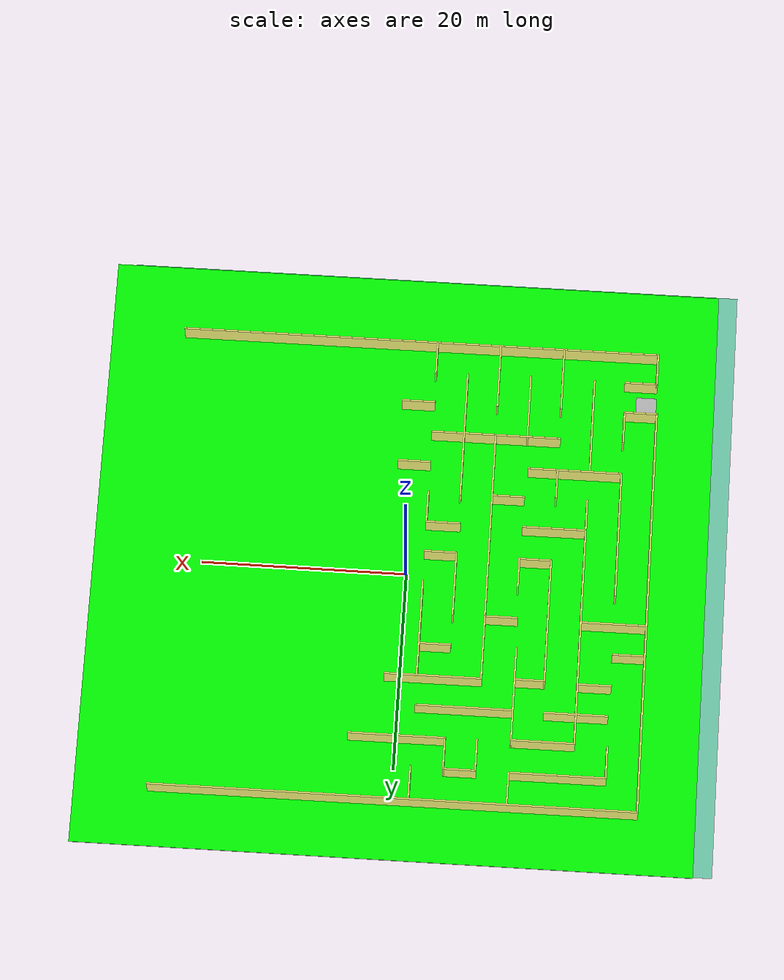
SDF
<sdf version="1.6">
 <world name="default">
  <include><uri>model://start_marker</uri><pose>-22.612965 -18.869457 0.026924 0 0 -1.57</pose></include>
  <model name="Maze3">
   <pose>-0.233521 -0.994132 0 0 -0 0</pose>
   <link name="Floor_0">
    <collision name="Floor_0_Collision">
     <geometry><box><size>60 60.01 0.1</size></box></geometry>
     <pose>0 0 0.05 0 -0 0</pose>
    </collision>
    <visual name="Floor_0_Visual">
     <pose>0 0 0.05 0 -0 0</pose>
     <geometry><box><size>60 60.01 0.1</size></box></geometry>
     <material>
      <script><uri>file://media/materials/scripts/gazebo.material</uri><name>Gazebo/Grey</name></script>
      <ambient>0 1 0 1</ambient>
     </material>
     <meta><layer>1</layer></meta>
    </visual>
    <pose>0.91648 0.050869 0.001 0 -0 0</pose>
   </link>
   <link name="Wall_0">
    <collision name="Wall_0_Collision">
     <geometry><box><size>60.01 60 0.001</size></box></geometry>
     <pose>0 0 0.0005 0 -0 0</pose>
    </collision>
    <visual name="Wall_0_Visual">
     <pose>0 0 0.0005 0 -0 0</pose>
     <geometry><box><size>60.01 60 0.001</size></box></geometry>
     <material>
      <script><uri>file://media/materials/scripts/gazebo.material</uri><name>Gazebo/Grey</name></script>
      <ambient>0.435294 0.796078 0.67451 1</ambient>
     </material>
     <meta><layer>0</layer></meta>
    </visual>
    <pose>-0.916479 -0.050868 0 0 -0 -1.5708</pose>
   </link>
   <link name="Wall_10">
    <collision name="Wall_10_Collision">
     <geometry><box><size>47.25 0.15 2.5</size></box></geometry>
     <pose>0 0 1.25 0 -0 0</pose>
    </collision>
    <visual name="Wall_10_Visual">
     <pose>0 0 1.25 0 -0 0</pose>
     <geometry><box><size>47.25 0.15 2.5</size></box></geometry>
     <material>
      <script><uri>file://media/materials/scripts/gazebo.material</uri><name>Gazebo/Grey</name></script>
      <ambient>1 1 0.5 1</ambient>
     </material>
     <meta><layer>1</layer></meta>
    </visual>
    <pose>0.135989 24.4954 0.001 0 -0 0</pose>
   </link>
   <link name="Wall_100">
    <collision name="Wall_100_Collision">
     <geometry><box><size>12.75 0.15 2.5</size></box></geometry>
     <pose>0 0 1.25 0 -0 0</pose>
    </collision>
    <visual name="Wall_100_Visual">
     <pose>0 0 1.25 0 -0 0</pose>
     <geometry><box><size>12.75 0.15 2.5</size></box></geometry>
     <material>
      <script><uri>file://media/materials/scripts/gazebo.material</uri><name>Gazebo/Grey</name></script>
      <ambient>1 1 0.5 1</ambient>
     </material>
     <meta><layer>1</layer></meta>
    </visual>
    <pose>-7.73864 -13.2116 0.001 0 -0 0</pose>
   </link>
   <link name="Wall_102">
    <collision name="Wall_102_Collision">
     <geometry><box><size>25.25 0.15 2.5</size></box></geometry>
     <pose>0 0 1.25 0 -0 0</pose>
    </collision>
    <visual name="Wall_102_Visual">
     <pose>0 0 1.25 0 -0 0</pose>
     <geometry><box><size>25.25 0.15 2.5</size></box></geometry>
     <material>
      <script><uri>file://media/materials/scripts/gazebo.material</uri><name>Gazebo/Grey</name></script>
      <ambient>1 1 0.5 1</ambient>
     </material>
     <meta><layer>1</layer></meta>
    </visual>
    <pose>-7.71415 -0.57461 0.001 0 -0 -1.5708</pose>
   </link>
   <link name="Wall_104">
    <collision name="Wall_104_Collision">
     <geometry><box><size>3.25 0.15 2.5</size></box></geometry>
     <pose>0 0 1.25 0 -0 0</pose>
    </collision>
    <visual name="Wall_104_Visual">
     <pose>0 0 1.25 0 -0 0</pose>
     <geometry><box><size>3.25 0.15 2.5</size></box></geometry>
     <material>
      <script><uri>file://media/materials/scripts/gazebo.material</uri><name>Gazebo/Grey</name></script>
      <ambient>1 1 0.5 1</ambient>
     </material>
     <meta><layer>1</layer></meta>
    </visual>
    <pose>-9.29394 5.59276 0.001 0 -0 3.14159</pose>
   </link>
   <link name="Wall_106">
    <collision name="Wall_106_Collision">
     <geometry><box><size>3.25 0.15 2.5</size></box></geometry>
     <pose>0 0 1.25 0 -0 0</pose>
    </collision>
    <visual name="Wall_106_Visual">
     <pose>0 0 1.25 0 -0 0</pose>
     <geometry><box><size>3.25 0.15 2.5</size></box></geometry>
     <material>
      <script><uri>file://media/materials/scripts/gazebo.material</uri><name>Gazebo/Grey</name></script>
      <ambient>1 1 0.5 1</ambient>
     </material>
     <meta><layer>1</layer></meta>
    </visual>
    <pose>-2.96556 8.71353 0.001 0 -0 0</pose>
   </link>
   <link name="Wall_108">
    <collision name="Wall_108_Collision">
     <geometry><box><size>9.5 0.15 2.5</size></box></geometry>
     <pose>0 0 1.25 0 -0 0</pose>
    </collision>
    <visual name="Wall_108_Visual">
     <pose>0 0 1.25 0 -0 0</pose>
     <geometry><box><size>9.5 0.15 2.5</size></box></geometry>
     <material>
      <script><uri>file://media/materials/scripts/gazebo.material</uri><name>Gazebo/Grey</name></script>
      <ambient>1 1 0.5 1</ambient>
     </material>
     <meta><layer>1</layer></meta>
    </visual>
    <pose>-3.03914 11.9754 0.001 0 -0 0</pose>
   </link>
   <link name="Wall_110">
    <collision name="Wall_110_Collision">
     <geometry><box><size>6.5 0.15 2.5</size></box></geometry>
     <pose>0 0 1.25 0 -0 0</pose>
    </collision>
    <visual name="Wall_110_Visual">
     <pose>0 0 1.25 0 -0 0</pose>
     <geometry><box><size>6.5 0.15 2.5</size></box></geometry>
     <material>
      <script><uri>file://media/materials/scripts/gazebo.material</uri><name>Gazebo/Grey</name></script>
      <ambient>1 1 0.5 1</ambient>
     </material>
     <meta><layer>1</layer></meta>
    </visual>
    <pose>-10.8437 -16.3573 0.001 0 -0 -1.5708</pose>
   </link>
   <link name="Wall_112">
    <collision name="Wall_112_Collision">
     <geometry><box><size>6.5 0.15 2.5</size></box></geometry>
     <pose>0 0 1.25 0 -0 0</pose>
    </collision>
    <visual name="Wall_112_Visual">
     <pose>0 0 1.25 0 -0 0</pose>
     <geometry><box><size>6.5 0.15 2.5</size></box></geometry>
     <material>
      <script><uri>file://media/materials/scripts/gazebo.material</uri><name>Gazebo/Grey</name></script>
      <ambient>1 1 0.5 1</ambient>
     </material>
     <meta><layer>1</layer></meta>
    </visual>
    <pose>-7.70885 -19.4687 0.001 0 -0 -1.5708</pose>
   </link>
   <link name="Wall_114">
    <collision name="Wall_114_Collision">
     <geometry><box><size>12.75 0.15 2.5</size></box></geometry>
     <pose>0 0 1.25 0 -0 0</pose>
    </collision>
    <visual name="Wall_114_Visual">
     <pose>0 0 1.25 0 -0 0</pose>
     <geometry><box><size>12.75 0.15 2.5</size></box></geometry>
     <material>
      <script><uri>file://media/materials/scripts/gazebo.material</uri><name>Gazebo/Grey</name></script>
      <ambient>1 1 0.5 1</ambient>
     </material>
     <meta><layer>1</layer></meta>
    </visual>
    <pose>-4.60774 -13.1135 0.001 0 -0 -1.5708</pose>
   </link>
   <link name="Wall_116">
    <collision name="Wall_116_Collision">
     <geometry><box><size>3.41182 0.15 2.5</size></box></geometry>
     <pose>0 0 1.25 0 -0 0</pose>
    </collision>
    <visual name="Wall_116_Visual">
     <pose>0 0 1.25 0 -0 0</pose>
     <geometry><box><size>3.41182 0.15 2.5</size></box></geometry>
     <material>
      <script><uri>file://media/materials/scripts/gazebo.material</uri><name>Gazebo/Grey</name></script>
      <ambient>1 1 0.5 1</ambient>
     </material>
     <meta><layer>1</layer></meta>
    </visual>
    <pose>-3.08797 -3.79503 0.001 0 -0 0</pose>
   </link>
   <link name="Wall_118">
    <collision name="Wall_118_Collision">
     <geometry><box><size>3.25 0.15 2.5</size></box></geometry>
     <pose>0 0 1.25 0 -0 0</pose>
    </collision>
    <visual name="Wall_118_Visual">
     <pose>0 0 1.25 0 -0 0</pose>
     <geometry><box><size>3.25 0.15 2.5</size></box></geometry>
     <material>
      <script><uri>file://media/materials/scripts/gazebo.material</uri><name>Gazebo/Grey</name></script>
      <ambient>1 1 0.5 1</ambient>
     </material>
     <meta><layer>1</layer></meta>
    </visual>
    <pose>-1.45706 -5.36526 0.001 0 -0 -1.5708</pose>
   </link>
   <link name="Wall_132">
    <collision name="Wall_132_Collision">
     <geometry><box><size>3.25 0.15 2.5</size></box></geometry>
     <pose>0 0 1.25 0 -0 0</pose>
    </collision>
    <visual name="Wall_132_Visual">
     <pose>0 0 1.25 0 -0 0</pose>
     <geometry><box><size>3.25 0.15 2.5</size></box></geometry>
     <material>
      <script><uri>file://media/materials/scripts/gazebo.material</uri><name>Gazebo/Grey</name></script>
      <ambient>1 1 0.5 1</ambient>
     </material>
     <meta><layer>1</layer></meta>
    </visual>
    <pose>0.132105 -10.0109 0.001 0 -0 3.14159</pose>
   </link>
   <link name="Wall_134">
    <collision name="Wall_134_Collision">
     <geometry><box><size>3.25 0.15 2.5</size></box></geometry>
     <pose>0 0 1.25 0 -0 0</pose>
    </collision>
    <visual name="Wall_134_Visual">
     <pose>0 0 1.25 0 -0 0</pose>
     <geometry><box><size>3.25 0.15 2.5</size></box></geometry>
     <material>
      <script><uri>file://media/materials/scripts/gazebo.material</uri><name>Gazebo/Grey</name></script>
      <ambient>1 1 0.5 1</ambient>
     </material>
     <meta><layer>1</layer></meta>
    </visual>
    <pose>0.039057 -16.3069 0.001 0 -0 3.14159</pose>
   </link>
   <link name="Wall_136">
    <collision name="Wall_136_Collision">
     <geometry><box><size>3.25 0.15 2.5</size></box></geometry>
     <pose>0 0 1.25 0 -0 0</pose>
    </collision>
    <visual name="Wall_136_Visual">
     <pose>0 0 1.25 0 -0 0</pose>
     <geometry><box><size>3.25 0.15 2.5</size></box></geometry>
     <material>
      <script><uri>file://media/materials/scripts/gazebo.material</uri><name>Gazebo/Grey</name></script>
      <ambient>1 1 0.5 1</ambient>
     </material>
     <meta><layer>1</layer></meta>
    </visual>
    <pose>-1.45826 -20.9911 0.001 0 -0 1.5708</pose>
   </link>
   <link name="Wall_138">
    <collision name="Wall_138_Collision">
     <geometry><box><size>9.75 0.15 2.5</size></box></geometry>
     <pose>0 0 1.25 0 -0 0</pose>
    </collision>
    <visual name="Wall_138_Visual">
     <pose>0 0 1.25 0 -0 0</pose>
     <geometry><box><size>9.75 0.15 2.5</size></box></geometry>
     <material>
      <script><uri>file://media/materials/scripts/gazebo.material</uri><name>Gazebo/Grey</name></script>
      <ambient>1 1 0.5 1</ambient>
     </material>
     <meta><layer>1</layer></meta>
    </visual>
    <pose>-1.47426 7.16575 0.001 0 -0 -1.5708</pose>
   </link>
   <link name="Wall_140">
    <collision name="Wall_140_Collision">
     <geometry><box><size>6.5 0.15 2.5</size></box></geometry>
     <pose>0 0 1.25 0 -0 0</pose>
    </collision>
    <visual name="Wall_140_Visual">
     <pose>0 0 1.25 0 -0 0</pose>
     <geometry><box><size>6.5 0.15 2.5</size></box></geometry>
     <material>
      <script><uri>file://media/materials/scripts/gazebo.material</uri><name>Gazebo/Grey</name></script>
      <ambient>1 1 0.5 1</ambient>
     </material>
     <meta><layer>1</layer></meta>
    </visual>
    <pose>-4.58142 2.42261 0.001 0 -0 -1.5708</pose>
   </link>
   <link name="Wall_141">
    <collision name="Wall_141_Collision">
     <geometry><box><size>3.25 0.15 2.5</size></box></geometry>
     <pose>0 0 1.25 0 -0 0</pose>
    </collision>
    <visual name="Wall_141_Visual">
     <pose>0 0 1.25 0 -0 0</pose>
     <geometry><box><size>3.25 0.15 2.5</size></box></geometry>
     <material>
      <script><uri>file://media/materials/scripts/gazebo.material</uri><name>Gazebo/Grey</name></script>
      <ambient>1 1 0.5 1</ambient>
     </material>
     <meta><layer>1</layer></meta>
    </visual>
    <pose>-3.03142 -0.75239 0.001 0 -0 0</pose>
   </link>
   <link name="Wall_163">
    <collision name="Wall_163_Collision">
     <geometry><box><size>9.5 0.15 2.5</size></box></geometry>
     <pose>0 0 1.25 0 -0 0</pose>
    </collision>
    <visual name="Wall_163_Visual">
     <pose>0 0 1.25 0 -0 0</pose>
     <geometry><box><size>9.5 0.15 2.5</size></box></geometry>
     <material>
      <script><uri>file://media/materials/scripts/gazebo.material</uri><name>Gazebo/Grey</name></script>
      <ambient>1 1 0.5 1</ambient>
     </material>
     <meta><layer>1</layer></meta>
    </visual>
    <pose>-6.24665 14.9929 0.001 0 -0 0</pose>
   </link>
   <link name="Wall_175">
    <collision name="Wall_175_Collision">
     <geometry><box><size>3.25 0.15 2.5</size></box></geometry>
     <pose>0 0 1.25 0 -0 0</pose>
    </collision>
    <visual name="Wall_175_Visual">
     <pose>0 0 1.25 0 -0 0</pose>
     <geometry><box><size>3.25 0.15 2.5</size></box></geometry>
     <material>
      <script><uri>file://media/materials/scripts/gazebo.material</uri><name>Gazebo/Grey</name></script>
      <ambient>1 1 0.5 1</ambient>
     </material>
     <meta><layer>1</layer></meta>
    </visual>
    <pose>-1.42323 22.7551 0.001 0 -0 1.5708</pose>
   </link>
   <link name="Wall_2">
    <collision name="Wall_2_Collision">
     <geometry><box><size>60.01 60 0.001</size></box></geometry>
     <pose>0 0 0.0005 0 -0 0</pose>
    </collision>
    <visual name="Wall_2_Visual">
     <pose>0 0 0.0005 0 -0 0</pose>
     <geometry><box><size>60.01 60 0.001</size></box></geometry>
     <material>
      <script><uri>file://media/materials/scripts/gazebo.material</uri><name>Gazebo/Grey</name></script>
      <ambient>1 1 0.5 1</ambient>
     </material>
     <meta><layer>1</layer></meta>
    </visual>
    <pose>0.91648 0.050869 0.001 0 -0 -1.5708</pose>
   </link>
   <link name="Wall_31">
    <collision name="Wall_31_Collision">
     <geometry><box><size>3.25 0.15 2.5</size></box></geometry>
     <pose>0 0 1.25 0 -0 0</pose>
    </collision>
    <visual name="Wall_31_Visual">
     <pose>0 0 1.25 0 -0 0</pose>
     <geometry><box><size>3.25 0.15 2.5</size></box></geometry>
     <material>
      <script><uri>file://media/materials/scripts/gazebo.material</uri><name>Gazebo/Grey</name></script>
      <ambient>1 1 0.5 1</ambient>
     </material>
     <meta><layer>1</layer></meta>
    </visual>
    <pose>-21.7364 -19.4937 0.001 0 -0 3.14159</pose>
   </link>
   <link name="Wall_32">
    <collision name="Wall_32_Collision">
     <geometry><box><size>3.25 0.15 2.5</size></box></geometry>
     <pose>0 0 1.25 0 -0 0</pose>
    </collision>
    <visual name="Wall_32_Visual">
     <pose>0 0 1.25 0 -0 0</pose>
     <geometry><box><size>3.25 0.15 2.5</size></box></geometry>
     <material>
      <script><uri>file://media/materials/scripts/gazebo.material</uri><name>Gazebo/Grey</name></script>
      <ambient>1 1 0.5 1</ambient>
     </material>
     <meta><layer>1</layer></meta>
    </visual>
    <pose>-23.2864 -21.0437 0.001 0 -0 -1.5708</pose>
   </link>
   <link name="Wall_35">
    <collision name="Wall_35_Collision">
     <geometry><box><size>47 0.15 2.5</size></box></geometry>
     <pose>0 0 1.25 0 -0 0</pose>
    </collision>
    <visual name="Wall_35_Visual">
     <pose>0 0 1.25 0 -0 0</pose>
     <geometry><box><size>47 0.15 2.5</size></box></geometry>
     <material>
      <script><uri>file://media/materials/scripts/gazebo.material</uri><name>Gazebo/Grey</name></script>
      <ambient>1 1 0.5 1</ambient>
     </material>
     <meta><layer>1</layer></meta>
    </visual>
    <pose>0.138569 -22.5937 0.001 0 -0 0</pose>
   </link>
   <link name="Wall_4">
    <collision name="Wall_4_Collision">
     <geometry><box><size>41 0.15 2.5</size></box></geometry>
     <pose>0 0 1.25 0 -0 0</pose>
    </collision>
    <visual name="Wall_4_Visual">
     <pose>0 0 1.25 0 -0 0</pose>
     <geometry><box><size>41 0.15 2.5</size></box></geometry>
     <material>
      <script><uri>file://media/materials/scripts/gazebo.material</uri><name>Gazebo/Grey</name></script>
      <ambient>1 1 0.5 1</ambient>
     </material>
     <meta><layer>1</layer></meta>
    </visual>
    <pose>-23.414 4.07037 0.001 0 -0 -1.5708</pose>
   </link>
   <link name="Wall_5">
    <collision name="Wall_5_Collision">
     <geometry><box><size>3.3276 0.15 2.5</size></box></geometry>
     <pose>0 0 1.25 0 -0 0</pose>
    </collision>
    <visual name="Wall_5_Visual">
     <pose>0 0 1.25 0 -0 0</pose>
     <geometry><box><size>3.3276 0.15 2.5</size></box></geometry>
     <material>
      <script><uri>file://media/materials/scripts/gazebo.material</uri><name>Gazebo/Grey</name></script>
      <ambient>1 1 0.5 1</ambient>
     </material>
     <meta><layer>1</layer></meta>
    </visual>
    <pose>-21.8252 -16.3546 0.001 0 -0 0</pose>
   </link>
   <link name="Wall_58">
    <collision name="Wall_58_Collision">
     <geometry><box><size>6.25 0.15 2.5</size></box></geometry>
     <pose>0 0 1.25 0 -0 0</pose>
    </collision>
    <visual name="Wall_58_Visual">
     <pose>0 0 1.25 0 -0 0</pose>
     <geometry><box><size>6.25 0.15 2.5</size></box></geometry>
     <material>
      <script><uri>file://media/materials/scripts/gazebo.material</uri><name>Gazebo/Grey</name></script>
      <ambient>1 1 0.5 1</ambient>
     </material>
     <meta><layer>1</layer></meta>
    </visual>
    <pose>-13.9885 -19.4697 0.001 0 -0 1.5708</pose>
   </link>
   <link name="Wall_60">
    <collision name="Wall_60_Collision">
     <geometry><box><size>9.5 0.15 2.5</size></box></geometry>
     <pose>0 0 1.25 0 -0 0</pose>
    </collision>
    <visual name="Wall_60_Visual">
     <pose>0 0 1.25 0 -0 0</pose>
     <geometry><box><size>9.5 0.15 2.5</size></box></geometry>
     <material>
      <script><uri>file://media/materials/scripts/gazebo.material</uri><name>Gazebo/Grey</name></script>
      <ambient>1 1 0.5 1</ambient>
     </material>
     <meta><layer>1</layer></meta>
    </visual>
    <pose>-17.139 -14.776 0.001 0 -0 1.5708</pose>
   </link>
   <link name="Wall_62">
    <collision name="Wall_62_Collision">
     <geometry><box><size>12.75 0.15 2.5</size></box></geometry>
     <pose>0 0 1.25 0 -0 0</pose>
    </collision>
    <visual name="Wall_62_Visual">
     <pose>0 0 1.25 0 -0 0</pose>
     <geometry><box><size>12.75 0.15 2.5</size></box></geometry>
     <material>
      <script><uri>file://media/materials/scripts/gazebo.material</uri><name>Gazebo/Grey</name></script>
      <ambient>1 1 0.5 1</ambient>
     </material>
     <meta><layer>1</layer></meta>
    </visual>
    <pose>-20.2487 -3.61528 0.001 0 -0 -1.5708</pose>
   </link>
   <link name="Wall_63">
    <collision name="Wall_63_Collision">
     <geometry><box><size>9.25 0.15 2.5</size></box></geometry>
     <pose>0 0 1.25 0 -0 0</pose>
    </collision>
    <visual name="Wall_63_Visual">
     <pose>0 0 1.25 0 -0 0</pose>
     <geometry><box><size>9.25 0.15 2.5</size></box></geometry>
     <material>
      <script><uri>file://media/materials/scripts/gazebo.material</uri><name>Gazebo/Grey</name></script>
      <ambient>1 1 0.5 1</ambient>
     </material>
     <meta><layer>1</layer></meta>
    </visual>
    <pose>-15.6987 -9.91528 0.001 0 -0 0</pose>
   </link>
   <link name="Wall_65">
    <collision name="Wall_65_Collision">
     <geometry><box><size>3.25 0.15 2.5</size></box></geometry>
     <pose>0 0 1.25 0 -0 0</pose>
    </collision>
    <visual name="Wall_65_Visual">
     <pose>0 0 1.25 0 -0 0</pose>
     <geometry><box><size>3.25 0.15 2.5</size></box></geometry>
     <material>
      <script><uri>file://media/materials/scripts/gazebo.material</uri><name>Gazebo/Grey</name></script>
      <ambient>1 1 0.5 1</ambient>
     </material>
     <meta><layer>1</layer></meta>
    </visual>
    <pose>-21.88 8.75098 0.001 0 -0 0</pose>
   </link>
   <link name="Wall_67">
    <collision name="Wall_67_Collision">
     <geometry><box><size>6.5 0.15 2.5</size></box></geometry>
     <pose>0 0 1.25 0 -0 0</pose>
    </collision>
    <visual name="Wall_67_Visual">
     <pose>0 0 1.25 0 -0 0</pose>
     <geometry><box><size>6.5 0.15 2.5</size></box></geometry>
     <material>
      <script><uri>file://media/materials/scripts/gazebo.material</uri><name>Gazebo/Grey</name></script>
      <ambient>1 1 0.5 1</ambient>
     </material>
     <meta><layer>1</layer></meta>
    </visual>
    <pose>-20.255 5.65557 0.001 0 -0 0</pose>
   </link>
   <link name="Wall_69">
    <collision name="Wall_69_Collision">
     <geometry><box><size>25 0.15 2.5</size></box></geometry>
     <pose>0 0 1.25 0 -0 0</pose>
    </collision>
    <visual name="Wall_69_Visual">
     <pose>0 0 1.25 0 -0 0</pose>
     <geometry><box><size>25 0.15 2.5</size></box></geometry>
     <material>
      <script><uri>file://media/materials/scripts/gazebo.material</uri><name>Gazebo/Grey</name></script>
      <ambient>1 1 0.5 1</ambient>
     </material>
     <meta><layer>1</layer></meta>
    </visual>
    <pose>-17.0424 5.58016 0.001 0 -0 1.5708</pose>
   </link>
   <link name="Wall_70">
    <collision name="Wall_70_Collision">
     <geometry><box><size>6.25 0.15 2.5</size></box></geometry>
     <pose>0 0 1.25 0 -0 0</pose>
    </collision>
    <visual name="Wall_70_Visual">
     <pose>0 0 1.25 0 -0 0</pose>
     <geometry><box><size>6.25 0.15 2.5</size></box></geometry>
     <material>
      <script><uri>file://media/materials/scripts/gazebo.material</uri><name>Gazebo/Grey</name></script>
      <ambient>1 1 0.5 1</ambient>
     </material>
     <meta><layer>1</layer></meta>
    </visual>
    <pose>-13.9924 18.0052 0.001 0 -0 0</pose>
   </link>
   <link name="Wall_71">
    <collision name="Wall_71_Collision">
     <geometry><box><size>9.5 0.15 2.5</size></box></geometry>
     <pose>0 0 1.25 0 -0 0</pose>
    </collision>
    <visual name="Wall_71_Visual">
     <pose>0 0 1.25 0 -0 0</pose>
     <geometry><box><size>9.5 0.15 2.5</size></box></geometry>
     <material>
      <script><uri>file://media/materials/scripts/gazebo.material</uri><name>Gazebo/Grey</name></script>
      <ambient>1 1 0.5 1</ambient>
     </material>
     <meta><layer>1</layer></meta>
    </visual>
    <pose>-10.9424 13.3302 0.001 0 -0 -1.5708</pose>
   </link>
   <link name="Wall_73">
    <collision name="Wall_73_Collision">
     <geometry><box><size>3 0.15 2.5</size></box></geometry>
     <pose>0 0 1.25 0 -0 0</pose>
    </collision>
    <visual name="Wall_73_Visual">
     <pose>0 0 1.25 0 -0 0</pose>
     <geometry><box><size>3 0.15 2.5</size></box></geometry>
     <material>
      <script><uri>file://media/materials/scripts/gazebo.material</uri><name>Gazebo/Grey</name></script>
      <ambient>1 1 0.5 1</ambient>
     </material>
     <meta><layer>1</layer></meta>
    </visual>
    <pose>-12.4141 11.8534 0.001 0 -0 3.14159</pose>
   </link>
   <link name="Wall_74">
    <collision name="Wall_74_Collision">
     <geometry><box><size>12.5 0.15 2.5</size></box></geometry>
     <pose>0 0 1.25 0 -0 0</pose>
    </collision>
    <visual name="Wall_74_Visual">
     <pose>0 0 1.25 0 -0 0</pose>
     <geometry><box><size>12.5 0.15 2.5</size></box></geometry>
     <material>
      <script><uri>file://media/materials/scripts/gazebo.material</uri><name>Gazebo/Grey</name></script>
      <ambient>1 1 0.5 1</ambient>
     </material>
     <meta><layer>1</layer></meta>
    </visual>
    <pose>-13.8391 5.67843 0.001 0 -0 -1.5708</pose>
   </link>
   <link name="Wall_75">
    <collision name="Wall_75_Collision">
     <geometry><box><size>3.25 0.15 2.5</size></box></geometry>
     <pose>0 0 1.25 0 -0 0</pose>
    </collision>
    <visual name="Wall_75_Visual">
     <pose>0 0 1.25 0 -0 0</pose>
     <geometry><box><size>3.25 0.15 2.5</size></box></geometry>
     <material>
      <script><uri>file://media/materials/scripts/gazebo.material</uri><name>Gazebo/Grey</name></script>
      <ambient>1 1 0.5 1</ambient>
     </material>
     <meta><layer>1</layer></meta>
    </visual>
    <pose>-12.2891 -0.496573 0.001 0 -0 0</pose>
   </link>
   <link name="Wall_76">
    <collision name="Wall_76_Collision">
     <geometry><box><size>3 0.15 2.5</size></box></geometry>
     <pose>0 0 1.25 0 -0 0</pose>
    </collision>
    <visual name="Wall_76_Visual">
     <pose>0 0 1.25 0 -0 0</pose>
     <geometry><box><size>3 0.15 2.5</size></box></geometry>
     <material>
      <script><uri>file://media/materials/scripts/gazebo.material</uri><name>Gazebo/Grey</name></script>
      <ambient>1 1 0.5 1</ambient>
     </material>
     <meta><layer>1</layer></meta>
    </visual>
    <pose>-10.7391 0.928427 0.001 0 -0 1.5708</pose>
   </link>
   <link name="Wall_78">
    <collision name="Wall_78_Collision">
     <geometry><box><size>6.25 0.15 2.5</size></box></geometry>
     <pose>0 0 1.25 0 -0 0</pose>
    </collision>
    <visual name="Wall_78_Visual">
     <pose>0 0 1.25 0 -0 0</pose>
     <geometry><box><size>6.25 0.15 2.5</size></box></geometry>
     <material>
      <script><uri>file://media/materials/scripts/gazebo.material</uri><name>Gazebo/Grey</name></script>
      <ambient>1 1 0.5 1</ambient>
     </material>
     <meta><layer>1</layer></meta>
    </visual>
    <pose>-13.9772 -3.81656 0.001 0 -0 0</pose>
   </link>
   <link name="Wall_8">
    <collision name="Wall_8_Collision">
     <geometry><box><size>3.25 0.15 2.5</size></box></geometry>
     <pose>0 0 1.25 0 -0 0</pose>
    </collision>
    <visual name="Wall_8_Visual">
     <pose>0 0 1.25 0 -0 0</pose>
     <geometry><box><size>3.25 0.15 2.5</size></box></geometry>
     <material>
      <script><uri>file://media/materials/scripts/gazebo.material</uri><name>Gazebo/Grey</name></script>
      <ambient>1 1 0.5 1</ambient>
     </material>
     <meta><layer>1</layer></meta>
    </visual>
    <pose>-20.2595 -14.8046 0.001 0 -0 1.5708</pose>
   </link>
   <link name="Wall_80">
    <collision name="Wall_80_Collision">
     <geometry><box><size>6.25 0.15 2.5</size></box></geometry>
     <pose>0 0 1.25 0 -0 0</pose>
    </collision>
    <visual name="Wall_80_Visual">
     <pose>0 0 1.25 0 -0 0</pose>
     <geometry><box><size>6.25 0.15 2.5</size></box></geometry>
     <material>
      <script><uri>file://media/materials/scripts/gazebo.material</uri><name>Gazebo/Grey</name></script>
      <ambient>1 1 0.5 1</ambient>
     </material>
     <meta><layer>1</layer></meta>
    </visual>
    <pose>-17.0408 15.0514 0.001 0 -0 0</pose>
   </link>
   <link name="Wall_82">
    <collision name="Wall_82_Collision">
     <geometry><box><size>3.25 0.15 2.5</size></box></geometry>
     <pose>0 0 1.25 0 -0 0</pose>
    </collision>
    <visual name="Wall_82_Visual">
     <pose>0 0 1.25 0 -0 0</pose>
     <geometry><box><size>3.25 0.15 2.5</size></box></geometry>
     <material>
      <script><uri>file://media/materials/scripts/gazebo.material</uri><name>Gazebo/Grey</name></script>
      <ambient>1 1 0.5 1</ambient>
     </material>
     <meta><layer>1</layer></meta>
    </visual>
    <pose>-18.7045 11.9827 0.001 0 -0 0</pose>
   </link>
   <link name="Wall_84">
    <collision name="Wall_84_Collision">
     <geometry><box><size>3.25 0.15 2.5</size></box></geometry>
     <pose>0 0 1.25 0 -0 0</pose>
    </collision>
    <visual name="Wall_84_Visual">
     <pose>0 0 1.25 0 -0 0</pose>
     <geometry><box><size>3.25 0.15 2.5</size></box></geometry>
     <material>
      <script><uri>file://media/materials/scripts/gazebo.material</uri><name>Gazebo/Grey</name></script>
      <ambient>1 1 0.5 1</ambient>
     </material>
     <meta><layer>1</layer></meta>
    </visual>
    <pose>-20.2324 19.732 0.001 0 -0 1.5708</pose>
   </link>
   <link name="Wall_85">
    <collision name="Wall_85_Collision">
     <geometry><box><size>9.5 0.15 2.5</size></box></geometry>
     <pose>0 0 1.25 0 -0 0</pose>
    </collision>
    <visual name="Wall_85_Visual">
     <pose>0 0 1.25 0 -0 0</pose>
     <geometry><box><size>9.5 0.15 2.5</size></box></geometry>
     <material>
      <script><uri>file://media/materials/scripts/gazebo.material</uri><name>Gazebo/Grey</name></script>
      <ambient>1 1 0.5 1</ambient>
     </material>
     <meta><layer>1</layer></meta>
    </visual>
    <pose>-15.5574 21.282 0.001 0 -0 0</pose>
   </link>
   <link name="Wall_86">
    <collision name="Wall_86_Collision">
     <geometry><box><size>3.25 0.15 2.5</size></box></geometry>
     <pose>0 0 1.25 0 -0 0</pose>
    </collision>
    <visual name="Wall_86_Visual">
     <pose>0 0 1.25 0 -0 0</pose>
     <geometry><box><size>3.25 0.15 2.5</size></box></geometry>
     <material>
      <script><uri>file://media/materials/scripts/gazebo.material</uri><name>Gazebo/Grey</name></script>
      <ambient>1 1 0.5 1</ambient>
     </material>
     <meta><layer>1</layer></meta>
    </visual>
    <pose>-10.8824 22.832 0.001 0 -0 1.5708</pose>
   </link>
   <link name="Wall_88">
    <collision name="Wall_88_Collision">
     <geometry><box><size>3.25 0.15 2.5</size></box></geometry>
     <pose>0 0 1.25 0 -0 0</pose>
    </collision>
    <visual name="Wall_88_Visual">
     <pose>0 0 1.25 0 -0 0</pose>
     <geometry><box><size>3.25 0.15 2.5</size></box></geometry>
     <material>
      <script><uri>file://media/materials/scripts/gazebo.material</uri><name>Gazebo/Grey</name></script>
      <ambient>1 1 0.5 1</ambient>
     </material>
     <meta><layer>1</layer></meta>
    </visual>
    <pose>-7.67844 19.732 0.001 0 -0 1.5708</pose>
   </link>
   <link name="Wall_89">
    <collision name="Wall_89_Collision">
     <geometry><box><size>3.25 0.15 2.5</size></box></geometry>
     <pose>0 0 1.25 0 -0 0</pose>
    </collision>
    <visual name="Wall_89_Visual">
     <pose>0 0 1.25 0 -0 0</pose>
     <geometry><box><size>3.25 0.15 2.5</size></box></geometry>
     <material>
      <script><uri>file://media/materials/scripts/gazebo.material</uri><name>Gazebo/Grey</name></script>
      <ambient>1 1 0.5 1</ambient>
     </material>
     <meta><layer>1</layer></meta>
    </visual>
    <pose>-6.12844 21.282 0.001 0 -0 0</pose>
   </link>
   <link name="Wall_90">
    <collision name="Wall_90_Collision">
     <geometry><box><size>3.25 0.15 2.5</size></box></geometry>
     <pose>0 0 1.25 0 -0 0</pose>
    </collision>
    <visual name="Wall_90_Visual">
     <pose>0 0 1.25 0 -0 0</pose>
     <geometry><box><size>3.25 0.15 2.5</size></box></geometry>
     <material>
      <script><uri>file://media/materials/scripts/gazebo.material</uri><name>Gazebo/Grey</name></script>
      <ambient>1 1 0.5 1</ambient>
     </material>
     <meta><layer>1</layer></meta>
    </visual>
    <pose>-4.57844 19.732 0.001 0 -0 -1.5708</pose>
   </link>
   <link name="Wall_91">
    <collision name="Wall_91_Collision">
     <geometry><box><size>9.5 0.15 2.5</size></box></geometry>
     <pose>0 0 1.25 0 -0 0</pose>
    </collision>
    <visual name="Wall_91_Visual">
     <pose>0 0 1.25 0 -0 0</pose>
     <geometry><box><size>9.5 0.15 2.5</size></box></geometry>
     <material>
      <script><uri>file://media/materials/scripts/gazebo.material</uri><name>Gazebo/Grey</name></script>
      <ambient>1 1 0.5 1</ambient>
     </material>
     <meta><layer>1</layer></meta>
    </visual>
    <pose>0.096557 18.182 0.001 0 -0 0</pose>
   </link>
   <link name="Wall_96">
    <collision name="Wall_96_Collision">
     <geometry><box><size>3 0.15 2.5</size></box></geometry>
     <pose>0 0 1.25 0 -0 0</pose>
    </collision>
    <visual name="Wall_96_Visual">
     <pose>0 0 1.25 0 -0 0</pose>
     <geometry><box><size>3 0.15 2.5</size></box></geometry>
     <material>
      <script><uri>file://media/materials/scripts/gazebo.material</uri><name>Gazebo/Grey</name></script>
      <ambient>1 1 0.5 1</ambient>
     </material>
     <meta><layer>1</layer></meta>
    </visual>
    <pose>-13.9746 -8.47649 0.001 0 -0 1.5708</pose>
   </link>
   <link name="Wall_98">
    <collision name="Wall_98_Collision">
     <geometry><box><size>3.25 0.15 2.5</size></box></geometry>
     <pose>0 0 1.25 0 -0 0</pose>
    </collision>
    <visual name="Wall_98_Visual">
     <pose>0 0 1.25 0 -0 0</pose>
     <geometry><box><size>3.25 0.15 2.5</size></box></geometry>
     <material>
      <script><uri>file://media/materials/scripts/gazebo.material</uri><name>Gazebo/Grey</name></script>
      <ambient>1 1 0.5 1</ambient>
     </material>
     <meta><layer>1</layer></meta>
    </visual>
    <pose>-9.28427 -6.89963 0.001 0 -0 0</pose>
   </link>
   <static>1</static>
  </model>
 </world>
</sdf>
